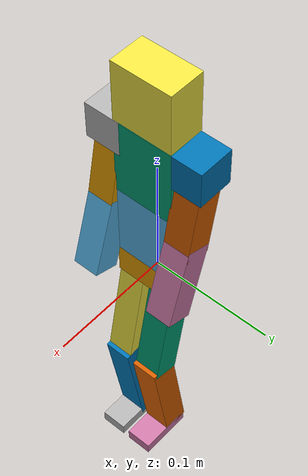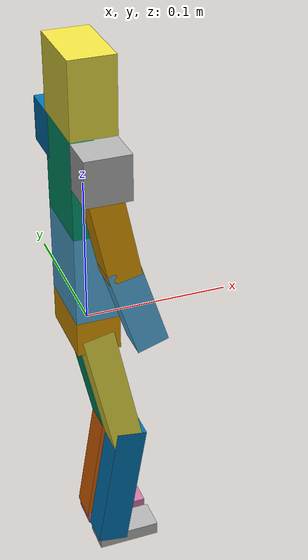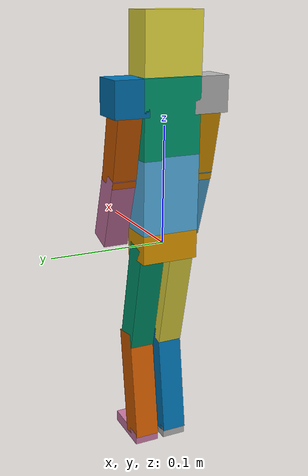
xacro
<?xml version="1.0"?>
<robot xmlns:xacro="http://www.ros.org/wiki/xacro" name="Robot 7">

<xacro:property name="total_weight" value="75" /> <!--KG-->
<xacro:property name="torso_weight" value="${total_weight * 0.6}" />
<xacro:property name="leg_weight" value="${total_weight * .15}" />
<xacro:property name="arm_weight" value="${total_weight * .05}" />
<xacro:property name="Cyan" value="0 1.0 1.0 1.0"/>
<xacro:property name="Lilac" value=".8 .6 1.0 1.0"/>

<xacro:macro name="solid_sphere_inertia_tensors" params="mass radius" >
    <inertial>
        <origin xyz="0.0 0.0 0.0" rpy="0.0 0.0 0.0"/>
        <mass value="${weight}"/>
        <inertia
        ixx="${(2/5) * mass * radius * radius}" ixy="0.0" ixz="0.0"
        iyy="${(2/5) * mass * radius * radius}" iyz="0.0"
        izz="${(2/5) * mass * radius * radius}  "/>
    </inertial>
</xacro:macro>

<xacro:macro name="hollow_sphere_inertia_tensors" params="mass radius" >
    <inertial>
        <origin xyz="0.0 0.0 0.0" rpy="0.0 0.0 0.0"/>
        <mass value="${weight}"/>
        <inertia
        ixx="${(2/3) * mass * radius * radius}" ixy="0.0" ixz="0.0"
        iyy="${(2/3) * mass * radius * radius}" iyz="0.0"
        izz="${(2/3) * mass * radius * radius}  "/>
    </inertial>
</xacro:macro>

<xacro:macro name="cuboid_inertia_tensors" params="mass length" >
    <inertial>
        <origin xyz="0.0 0.0 0.0" rpy="0.0 0.0 0.0"/>
        <mass value="${mass}"/>
        <inertia
        ixx="${(mass/12)*((length*length*.025)+(length*length*0.0225))}" ixy="0.0" ixz="0.0"
        iyy="${(mass/12)*((length*length)+(length*length*0.0225))}" iyz="0.0"
        izz="${(mass/12)*((length*length)+(length*length*0.025))}"/>
    </inertial>
</xacro:macro>

<xacro:macro name="cuboid" params="name mass x_len y_len z_len origin rpy">
    <link name="${name}">
        <visual>
            <geometry>
                <box size="${x_len} ${y_len} ${z_len}"/>
            </geometry>
            <origin xyz="${origin}" rpy="${rpy}"/>
        </visual>
        <collision>
            <geometry>
                <box size="${x_len} ${y_len} ${z_len}"/>
            </geometry>
            <origin xyz="${origin}" rpy="${rpy}"/>
        </collision>
        <xacro:cuboid_inertia_tensors mass="${mass}" length="${z_len}"/>
    </link>
</xacro:macro>

<xacro:macro name="revolve" params="name parent child hi lo axis offset">
    <joint name="${name}" type="revolute">
        <parent link="${parent}"/>
        <child link="${child}"/>
        <limit lower="${lo}" upper="${hi}" effort="200.0" velocity="25.0"/>
        <origin xyz="${offset}"/>
        <axis xyz="${axis}"/>
    </joint>
</xacro:macro>

<xacro:cuboid name="base_link" mass="${torso_weight * .12}" x_len=".03" y_len=".05" z_len=".025" origin="0 0 0" rpy="0 0 0"/>

<!-- Torso Links-->
<xacro:cuboid name="low_torso" mass="${torso_weight * .31}" x_len=".03" y_len=".05" z_len=".065" origin="0 0 .045" rpy="0 0 0"/>
<xacro:cuboid name="upper_torso" mass="${torso_weight * .31}" x_len=".03" y_len=".05" z_len=".065" origin="0 0 .0325" rpy="0 0 0"/>
<xacro:cuboid name="head" mass="${torso_weight * .24}" x_len=".03" y_len=".05" z_len=".05" origin="0 0 .0325" rpy="0 0 0"/>

<!-- Torso joints-->
<xacro:revolve name="bend_low_torso" parent="base_link" child="low_torso" hi=".8" lo="-.8" axis="0 1 0" offset="0 0 0"/>
<xacro:revolve name="twist_upper_torso" parent="low_torso" child="upper_torso" hi=".8" lo="-.8" axis="0 0 1" offset="0 0 .075"/>
<xacro:revolve name="gaze" parent="upper_torso" child="head" hi=".8" lo="-.8" axis="0 0 1" offset="0 0 .058"/>

<!-- Arm Links-->
<xacro:cuboid name="right_delt" mass="${arm_weight * .4}" x_len=".03" y_len=".03" z_len=".03" origin="0 0 0" rpy="0 0 0"/>
<xacro:cuboid name="right_upper_arm" mass="${arm_weight * .29}" x_len=".022" y_len=".022" z_len=".065" origin=".005 0 -.025" rpy="0 -${3.14/15} 0"/>
<xacro:cuboid name="right_lower_arm" mass="${arm_weight * .29}" x_len=".022" y_len=".022" z_len=".065" origin=".005 0 -.025" rpy="0 -${3.14/10} 0"/>

<xacro:cuboid name="left_delt" mass="${arm_weight * .4}" x_len=".03" y_len=".03" z_len=".03" origin="0 0 0" rpy="0 0 0"/>
<xacro:cuboid name="left_upper_arm" mass="${arm_weight * .29}" x_len=".022" y_len=".022" z_len=".065" origin=".005 0 -.025" rpy="0 -${3.14/15} 0"/>
<xacro:cuboid name="left_lower_arm" mass="${arm_weight * .29}" x_len=".022" y_len=".022" z_len=".065" origin=".005 0 -.025" rpy="0 -${3.14/10} 0"/>

<!-- Arm joints-->
<xacro:revolve name="right_shoulder_x" parent="upper_torso" child="right_delt" hi="1.5" lo="0" axis="1 0 0" offset="0 .035 .05"/>
<xacro:revolve name="right_shoulder_y" parent="right_delt" child="right_upper_arm" hi="1.2" lo="-1.2" axis="0 1 0" offset="0 0 -.015"/>
<xacro:revolve name="right_elbow" parent="right_upper_arm" child="right_lower_arm" hi="0" lo="-1.2" axis="0 1 0" offset=".015 0 -.055"/>

<xacro:revolve name="left_shoulder_x" parent="upper_torso" child="left_delt" hi="0" lo="-1.5" axis="1 0 0" offset="0 -.035 .05"/>

<xacro:revolve name="left_shoulder_y" parent="left_delt" child="left_upper_arm" hi="1.2" lo="-1.2" axis="0 1 0" offset="0 0 -.015"/>
<xacro:revolve name="left_elbow" parent="left_upper_arm" child="left_lower_arm" hi="0" lo="-1.2" axis="0 1 0" offset=".015 0 -.055"/>

<!-- Leg Links-->
<xacro:cuboid name="right_thigh" mass="${arm_weight * .5}" x_len=".022" y_len=".022" z_len=".1" origin=".01 0 -.05" rpy="0 -${3.14/15} 0"/>
<xacro:cuboid name="left_thigh" mass="${arm_weight * .5}" x_len=".022" y_len=".022" z_len=".1" origin=".01 0 -.05" rpy="0 -${3.14/15} 0"/>

<xacro:cuboid name="left_calf" mass="${arm_weight * .5}" x_len=".022" y_len=".022" z_len=".1" origin="-.005 0 -.05" rpy="0 ${3.14/20} 0"/>
<xacro:cuboid name="right_calf" mass="${arm_weight * .5}" x_len=".022" y_len=".022" z_len=".1" origin="-.005 0 -.05" rpy="0 ${3.14/20} 0"/>

<xacro:cuboid name="right_foot" mass="${arm_weight * .05}" x_len=".045" y_len=".022" z_len=".01" origin=".015 0 0" rpy="0 0 0"/>
<xacro:cuboid name="left_foot" mass="${arm_weight * .05}" x_len=".045" y_len=".022" z_len=".01" origin=".015 0 0" rpy="0 0 0"/>

<!-- Leg joints-->
<xacro:revolve name="right_hip_joint" parent="base_link" child="right_thigh" hi="1.2" lo="-1.2" axis="0 1 0" offset="0 .014 0"/>
<xacro:revolve name="left_hip_joint" parent="base_link" child="left_thigh" hi="1.2" lo="-1.2" axis="0 1 0" offset="0 -.014 0"/>

<xacro:revolve name="right_knee" parent="right_thigh" child="right_calf" hi="1.2" lo="0" axis="0 1 0" offset=".02 0 -.09"/>
<xacro:revolve name="left_knee" parent="left_thigh" child="left_calf" hi="1.2" lo="0" axis="0 1 0" offset=".02 0 -.09"/>

<xacro:revolve name="right_ankle" parent="right_calf" child="right_foot" hi=".8" lo="-.8" axis="0 1 0" offset="-.015 0 -.1"/>
<xacro:revolve name="left_ankle" parent="left_calf" child="left_foot" hi=".8" lo="-.8" axis="0 1 0" offset="-.015 0 -.1"/>

</robot>
